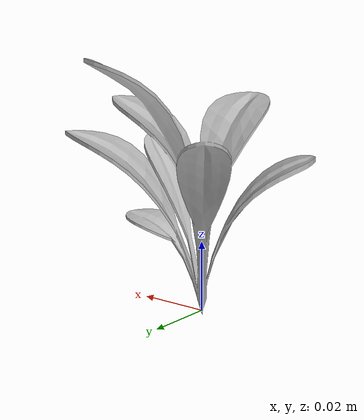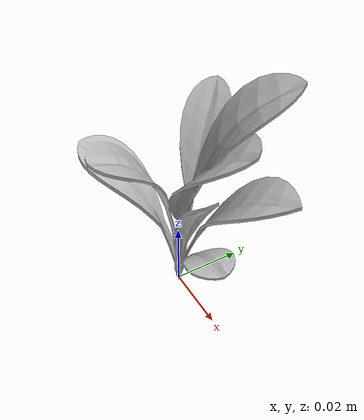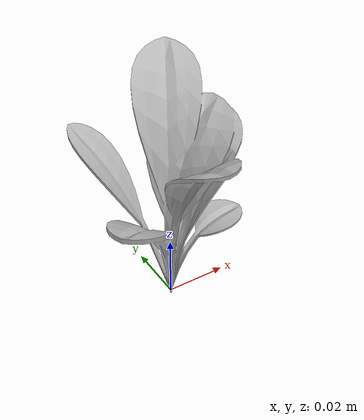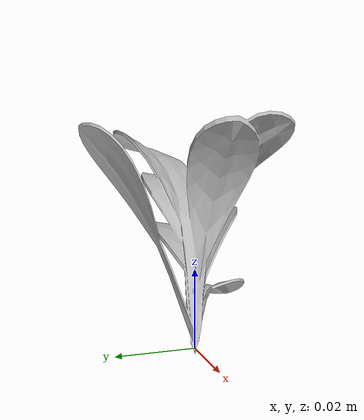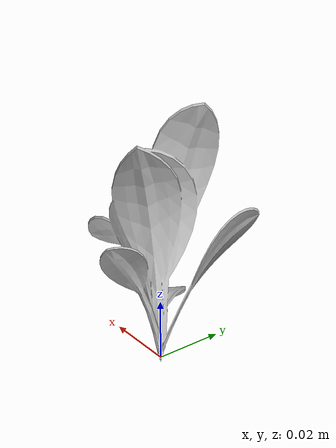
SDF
<sdf version="1.6">
  <model name="sugar_beet_39">
    <static>true</static>
    <link name="body">
      <visual name="visual">
        <geometry>
          <mesh>
            <uri>file:///sugar_beet_39/media/sugar_beet.dae</uri>
          </mesh>
        </geometry>
      </visual>
    </link>
  </model>
</sdf>
